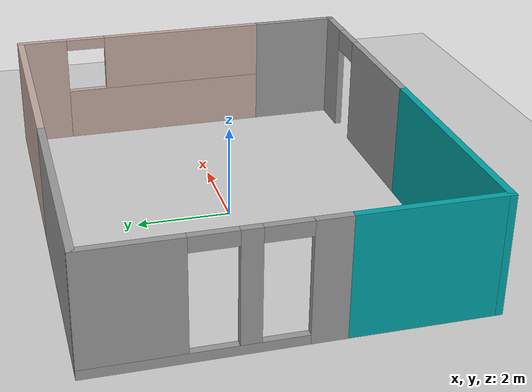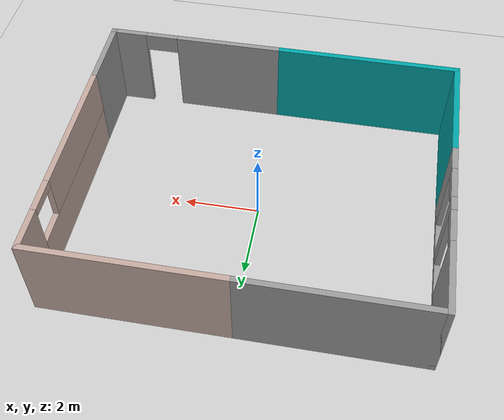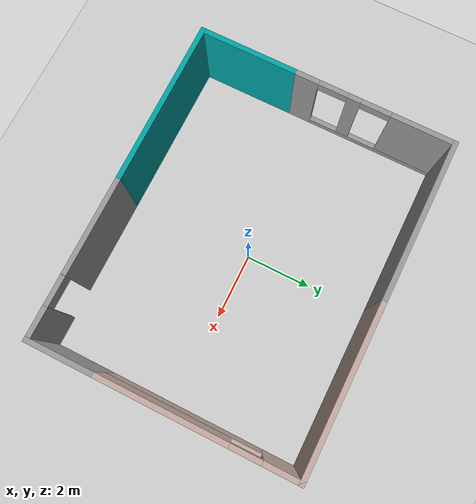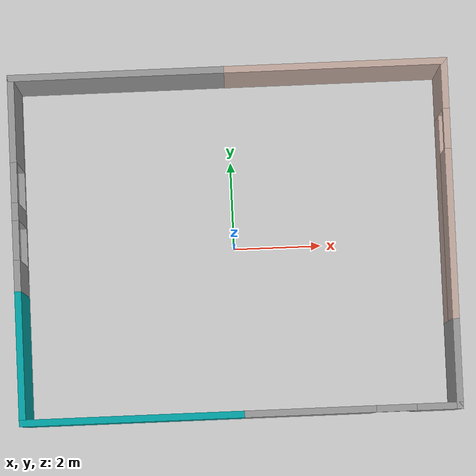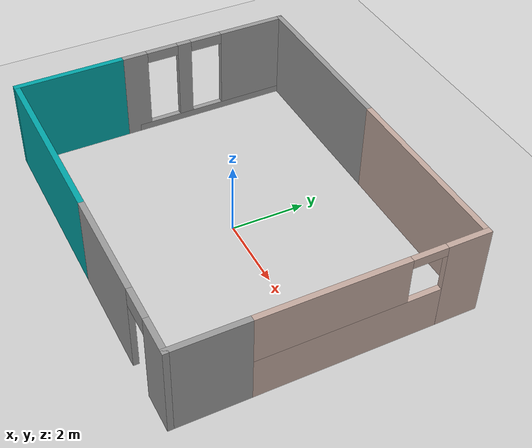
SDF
<sdf version="1.7">
 <world name="default">
  <model name="ground_plane">
   <static>1</static>
   <link name="link">
    <collision name="collision">
     <geometry><plane><normal>0 0 1</normal><size>100 100</size></plane></geometry>
     <surface>
      <contact><collide_bitmask>65535</collide_bitmask></contact>
      <friction><ode><mu>100</mu><mu2>50</mu2></ode></friction>
     </surface>
    </collision>
    <visual name="visual">
     <cast_shadows>0</cast_shadows>
     <geometry><plane><normal>0 0 1</normal><size>100 100</size></plane></geometry>
     <material>
      <script><uri>file://media/materials/scripts/gazebo.material</uri><name>Gazebo/Grey</name></script>
     </material>
    </visual>
   </link>
  </model>
  <model name="my_building_p4_small_0">
   <link name="Wall_16">
    <pose>-2.425 3.85 0 0 -0 0</pose>
    <inertial>
     <mass>1</mass>
     <inertia><ixx>1</ixx><ixy>0</ixy><ixz>0</ixz><iyy>1</iyy><iyz>0</iyz><izz>1</izz></inertia>
    </inertial>
    <visual name="Wall_16_Visual">
     <pose>-0.075 0 1.25 0 -0 0</pose>
     <geometry><box><size>4.85 0.15 2.5</size></box></geometry>
     <material>
      <script><uri>file://media/materials/scripts/gazebo.material</uri><name>Gazebo/Grey</name></script>
      <ambient>1 1 1 1</ambient>
      <shader type="pixel"><normal_map>__default__</normal_map></shader>
      <diffuse>0.7 0.7 0.7 1</diffuse>
      <specular>0.01 0.01 0.01 1</specular>
      <emissive>0 0 0 1</emissive>
     </material>
     <meta><layer>0</layer></meta>
    </visual>
    <collision name="Wall_16_Collision">
     <pose>-0.075 0 1.25 0 -0 0</pose>
     <geometry><box><size>4.85 0.15 2.5</size></box></geometry>
     <surface>
      <friction>
       <ode><mu>1</mu><mu2>1</mu2><fdir1>0 0 0</fdir1><slip1>0</slip1><slip2>0</slip2></ode>
       <torsional>
        <coefficient>1</coefficient>
        <patch_radius>0</patch_radius>
        <surface_radius>0</surface_radius>
        <use_patch_radius>1</use_patch_radius>
        <ode><slip>0</slip></ode>
       </torsional>
      </friction>
      <bounce><restitution_coefficient>0</restitution_coefficient><threshold>1e+06</threshold></bounce>
      <contact>
       <collide_without_contact>0</collide_without_contact>
       <collide_without_contact_bitmask>1</collide_without_contact_bitmask>
       <collide_bitmask>1</collide_bitmask>
       <ode>
        <soft_cfm>0</soft_cfm>
        <soft_erp>0.2</soft_erp>
        <kp>1e+13</kp>
        <kd>1</kd>
        <max_vel>0.01</max_vel>
        <min_depth>0</min_depth>
       </ode>
       <bullet>
        <split_impulse>1</split_impulse>
        <split_impulse_penetration_threshold>-0.01</split_impulse_penetration_threshold>
        <soft_cfm>0</soft_cfm>
        <soft_erp>0.2</soft_erp>
        <kp>1e+13</kp>
        <kd>1</kd>
       </bullet>
      </contact>
     </surface>
    </collision>
   </link>
   <link name="Wall_17">
    <pose>2.425 3.85 0 0 -0 0</pose>
    <inertial>
     <mass>1</mass>
     <inertia><ixx>1</ixx><ixy>0</ixy><ixz>0</ixz><iyy>1</iyy><iyz>0</iyz><izz>1</izz></inertia>
    </inertial>
    <visual name="Wall_17_Visual">
     <pose>0 0 1.25 0 -0 0</pose>
     <geometry><box><size>5 0.15 2.5</size></box></geometry>
     <material>
      <script><uri>file://media/materials/scripts/gazebo.material</uri><name>Gazebo/Grey</name></script>
      <ambient>0.76 0.66 0.62 1</ambient>
      <shader type="pixel"><normal_map>__default__</normal_map></shader>
      <diffuse>0.76 0.66 0.62 1</diffuse>
      <specular>0.01 0.01 0.01 1</specular>
      <emissive>0 0 0 1</emissive>
     </material>
     <meta><layer>0</layer></meta>
    </visual>
    <collision name="Wall_17_Collision">
     <pose>0 0 1.25 0 -0 0</pose>
     <geometry><box><size>5 0.15 2.5</size></box></geometry>
     <surface>
      <friction>
       <ode><mu>1</mu><mu2>1</mu2><fdir1>0 0 0</fdir1><slip1>0</slip1><slip2>0</slip2></ode>
       <torsional>
        <coefficient>1</coefficient>
        <patch_radius>0</patch_radius>
        <surface_radius>0</surface_radius>
        <use_patch_radius>1</use_patch_radius>
        <ode><slip>0</slip></ode>
       </torsional>
      </friction>
      <bounce><restitution_coefficient>0</restitution_coefficient><threshold>1e+06</threshold></bounce>
      <contact>
       <collide_without_contact>0</collide_without_contact>
       <collide_without_contact_bitmask>1</collide_without_contact_bitmask>
       <collide_bitmask>1</collide_bitmask>
       <ode>
        <soft_cfm>0</soft_cfm>
        <soft_erp>0.2</soft_erp>
        <kp>1e+13</kp>
        <kd>1</kd>
        <max_vel>0.01</max_vel>
        <min_depth>0</min_depth>
       </ode>
       <bullet>
        <split_impulse>1</split_impulse>
        <split_impulse_penetration_threshold>-0.01</split_impulse_penetration_threshold>
        <soft_cfm>0</soft_cfm>
        <soft_erp>0.2</soft_erp>
        <kp>1e+13</kp>
        <kd>1</kd>
       </bullet>
      </contact>
     </surface>
    </collision>
   </link>
   <link name="Wall_18">
    <pose>4.85 2.425 0 0 0 -1.5708</pose>
    <inertial>
     <mass>1</mass>
     <inertia><ixx>1</ixx><ixy>0</ixy><ixz>0</ixz><iyy>1</iyy><iyz>0</iyz><izz>1</izz></inertia>
    </inertial>
    <visual name="Wall_18_Visual_0">
     <pose>-0.925323 0 1.25 0 -0 0</pose>
     <geometry><box><size>1.14935 0.15 2.5</size></box></geometry>
     <material>
      <script><uri>file://media/materials/scripts/gazebo.material</uri><name>Gazebo/Grey</name></script>
      <ambient>0.76 0.66 0.62 1</ambient>
      <shader type="pixel"><normal_map>__default__</normal_map></shader>
      <diffuse>0.76 0.66 0.62 1</diffuse>
      <specular>0.01 0.01 0.01 1</specular>
      <emissive>0 0 0 1</emissive>
     </material>
     <meta><layer>0</layer></meta>
    </visual>
    <visual name="Wall_18_Visual_3">
     <pose>0.1 0 2.375 0 -0 0</pose>
     <geometry><box><size>0.9 0.15 0.25</size></box></geometry>
     <material>
      <script><uri>file://media/materials/scripts/gazebo.material</uri><name>Gazebo/Grey</name></script>
      <ambient>0.76 0.66 0.62 1</ambient>
      <shader type="pixel"><normal_map>__default__</normal_map></shader>
      <diffuse>0.76 0.66 0.62 1</diffuse>
      <specular>0.01 0.01 0.01 1</specular>
      <emissive>0 0 0 1</emissive>
     </material>
     <meta><layer>0</layer></meta>
    </visual>
    <visual name="Wall_18_Visual_1">
     <pose>2 0 0.6 0 -0 0</pose>
     <geometry><box><size>4.7 0.15 1.2</size></box></geometry>
     <material>
      <script><uri>file://media/materials/scripts/gazebo.material</uri><name>Gazebo/Grey</name></script>
      <ambient>0.76 0.66 0.62 1</ambient>
      <shader type="pixel"><normal_map>__default__</normal_map></shader>
      <diffuse>0.76 0.66 0.62 1</diffuse>
      <specular>0.01 0.01 0.01 1</specular>
      <emissive>0 0 0 1</emissive>
     </material>
     <meta><layer>0</layer></meta>
    </visual>
    <visual name="Wall_18_Visual_2">
     <pose>2.45 0 1.85 0 -0 0</pose>
     <geometry><box><size>3.8 0.15 1.3</size></box></geometry>
     <material>
      <script><uri>file://media/materials/scripts/gazebo.material</uri><name>Gazebo/Grey</name></script>
      <ambient>0.76 0.66 0.62 1</ambient>
      <shader type="pixel"><normal_map>__default__</normal_map></shader>
      <diffuse>0.76 0.66 0.62 1</diffuse>
      <specular>0.01 0.01 0.01 1</specular>
      <emissive>0 0 0 1</emissive>
     </material>
     <meta><layer>0</layer></meta>
    </visual>
    <collision name="Wall_18_Collision_2">
     <pose>2.45 0 1.85 0 -0 0</pose>
     <geometry><box><size>3.8 0.15 1.3</size></box></geometry>
     <surface>
      <friction>
       <ode><mu>1</mu><mu2>1</mu2><fdir1>0 0 0</fdir1><slip1>0</slip1><slip2>0</slip2></ode>
       <torsional>
        <coefficient>1</coefficient>
        <patch_radius>0</patch_radius>
        <surface_radius>0</surface_radius>
        <use_patch_radius>1</use_patch_radius>
        <ode><slip>0</slip></ode>
       </torsional>
      </friction>
      <bounce><restitution_coefficient>0</restitution_coefficient><threshold>1e+06</threshold></bounce>
      <contact>
       <collide_without_contact>0</collide_without_contact>
       <collide_without_contact_bitmask>1</collide_without_contact_bitmask>
       <collide_bitmask>1</collide_bitmask>
       <ode>
        <soft_cfm>0</soft_cfm>
        <soft_erp>0.2</soft_erp>
        <kp>1e+13</kp>
        <kd>1</kd>
        <max_vel>0.01</max_vel>
        <min_depth>0</min_depth>
       </ode>
       <bullet>
        <split_impulse>1</split_impulse>
        <split_impulse_penetration_threshold>-0.01</split_impulse_penetration_threshold>
        <soft_cfm>0</soft_cfm>
        <soft_erp>0.2</soft_erp>
        <kp>1e+13</kp>
        <kd>1</kd>
       </bullet>
      </contact>
     </surface>
    </collision>
    <collision name="Wall_18_Collision_0">
     <pose>-0.925323 0 1.25 0 -0 0</pose>
     <geometry><box><size>1.14935 0.15 2.5</size></box></geometry>
     <surface>
      <friction>
       <ode><mu>1</mu><mu2>1</mu2><fdir1>0 0 0</fdir1><slip1>0</slip1><slip2>0</slip2></ode>
       <torsional>
        <coefficient>1</coefficient>
        <patch_radius>0</patch_radius>
        <surface_radius>0</surface_radius>
        <use_patch_radius>1</use_patch_radius>
        <ode><slip>0</slip></ode>
       </torsional>
      </friction>
      <bounce><restitution_coefficient>0</restitution_coefficient><threshold>1e+06</threshold></bounce>
      <contact>
       <collide_without_contact>0</collide_without_contact>
       <collide_without_contact_bitmask>1</collide_without_contact_bitmask>
       <collide_bitmask>1</collide_bitmask>
       <ode>
        <soft_cfm>0</soft_cfm>
        <soft_erp>0.2</soft_erp>
        <kp>1e+13</kp>
        <kd>1</kd>
        <max_vel>0.01</max_vel>
        <min_depth>0</min_depth>
       </ode>
       <bullet>
        <split_impulse>1</split_impulse>
        <split_impulse_penetration_threshold>-0.01</split_impulse_penetration_threshold>
        <soft_cfm>0</soft_cfm>
        <soft_erp>0.2</soft_erp>
        <kp>1e+13</kp>
        <kd>1</kd>
       </bullet>
      </contact>
     </surface>
    </collision>
    <collision name="Wall_18_Collision_1">
     <pose>2 0 0.6 0 -0 0</pose>
     <geometry><box><size>4.7 0.15 1.2</size></box></geometry>
     <surface>
      <friction>
       <ode><mu>1</mu><mu2>1</mu2><fdir1>0 0 0</fdir1><slip1>0</slip1><slip2>0</slip2></ode>
       <torsional>
        <coefficient>1</coefficient>
        <patch_radius>0</patch_radius>
        <surface_radius>0</surface_radius>
        <use_patch_radius>1</use_patch_radius>
        <ode><slip>0</slip></ode>
       </torsional>
      </friction>
      <bounce><restitution_coefficient>0</restitution_coefficient><threshold>1e+06</threshold></bounce>
      <contact>
       <collide_without_contact>0</collide_without_contact>
       <collide_without_contact_bitmask>1</collide_without_contact_bitmask>
       <collide_bitmask>1</collide_bitmask>
       <ode>
        <soft_cfm>0</soft_cfm>
        <soft_erp>0.2</soft_erp>
        <kp>1e+13</kp>
        <kd>1</kd>
        <max_vel>0.01</max_vel>
        <min_depth>0</min_depth>
       </ode>
       <bullet>
        <split_impulse>1</split_impulse>
        <split_impulse_penetration_threshold>-0.01</split_impulse_penetration_threshold>
        <soft_cfm>0</soft_cfm>
        <soft_erp>0.2</soft_erp>
        <kp>1e+13</kp>
        <kd>1</kd>
       </bullet>
      </contact>
     </surface>
    </collision>
    <collision name="Wall_18_Collision_3">
     <pose>0.1 0 2.375 0 -0 0</pose>
     <geometry><box><size>0.9 0.15 0.25</size></box></geometry>
     <surface>
      <friction>
       <ode><mu>1</mu><mu2>1</mu2><fdir1>0 0 0</fdir1><slip1>0</slip1><slip2>0</slip2></ode>
       <torsional>
        <coefficient>1</coefficient>
        <patch_radius>0</patch_radius>
        <surface_radius>0</surface_radius>
        <use_patch_radius>1</use_patch_radius>
        <ode><slip>0</slip></ode>
       </torsional>
      </friction>
      <bounce><restitution_coefficient>0</restitution_coefficient><threshold>1e+06</threshold></bounce>
      <contact>
       <collide_without_contact>0</collide_without_contact>
       <collide_without_contact_bitmask>1</collide_without_contact_bitmask>
       <collide_bitmask>1</collide_bitmask>
       <ode>
        <soft_cfm>0</soft_cfm>
        <soft_erp>0.2</soft_erp>
        <kp>1e+13</kp>
        <kd>1</kd>
        <max_vel>0.01</max_vel>
        <min_depth>0</min_depth>
       </ode>
       <bullet>
        <split_impulse>1</split_impulse>
        <split_impulse_penetration_threshold>-0.01</split_impulse_penetration_threshold>
        <soft_cfm>0</soft_cfm>
        <soft_erp>0.2</soft_erp>
        <kp>1e+13</kp>
        <kd>1</kd>
       </bullet>
      </contact>
     </surface>
    </collision>
   </link>
   <link name="Wall_19">
    <pose>4.85 -1.425 0 0 0 -1.5708</pose>
    <inertial>
     <mass>1</mass>
     <inertia><ixx>1</ixx><ixy>0</ixy><ixz>0</ixz><iyy>1</iyy><iyz>0</iyz><izz>1</izz></inertia>
    </inertial>
    <visual name="Wall_19_Visual">
     <pose>1.5 0 1.25 0 -0 0</pose>
     <geometry><box><size>2 0.15 2.5</size></box></geometry>
     <material>
      <script><uri>file://media/materials/scripts/gazebo.material</uri><name>Gazebo/Grey</name></script>
      <ambient>1 1 1 1</ambient>
      <shader type="pixel"><normal_map>__default__</normal_map></shader>
      <diffuse>0.7 0.7 0.7 1</diffuse>
      <specular>0.01 0.01 0.01 1</specular>
      <emissive>0 0 0 1</emissive>
     </material>
     <meta><layer>0</layer></meta>
    </visual>
    <collision name="Wall_19_Collision">
     <pose>1.5 0 1.25 0 -0 0</pose>
     <geometry><box><size>2 0.15 2.5</size></box></geometry>
     <surface>
      <friction>
       <ode><mu>1</mu><mu2>1</mu2><fdir1>0 0 0</fdir1><slip1>0</slip1><slip2>0</slip2></ode>
       <torsional>
        <coefficient>1</coefficient>
        <patch_radius>0</patch_radius>
        <surface_radius>0</surface_radius>
        <use_patch_radius>1</use_patch_radius>
        <ode><slip>0</slip></ode>
       </torsional>
      </friction>
      <bounce><restitution_coefficient>0</restitution_coefficient><threshold>1e+06</threshold></bounce>
      <contact>
       <collide_without_contact>0</collide_without_contact>
       <collide_without_contact_bitmask>1</collide_without_contact_bitmask>
       <collide_bitmask>1</collide_bitmask>
       <ode>
        <soft_cfm>0</soft_cfm>
        <soft_erp>0.2</soft_erp>
        <kp>1e+13</kp>
        <kd>1</kd>
        <max_vel>0.01</max_vel>
        <min_depth>0</min_depth>
       </ode>
       <bullet>
        <split_impulse>1</split_impulse>
        <split_impulse_penetration_threshold>-0.01</split_impulse_penetration_threshold>
        <soft_cfm>0</soft_cfm>
        <soft_erp>0.2</soft_erp>
        <kp>1e+13</kp>
        <kd>1</kd>
       </bullet>
      </contact>
     </surface>
    </collision>
   </link>
   <link name="Wall_20">
    <pose>2.425 -3.85 0 0 -0 3.14159</pose>
    <inertial>
     <mass>1</mass>
     <inertia><ixx>1</ixx><ixy>0</ixy><ixz>0</ixz><iyy>1</iyy><iyz>0</iyz><izz>1</izz></inertia>
    </inertial>
    <visual name="Wall_20_Visual_0">
     <pose>-1.9855 0 1.25 0 -0 0</pose>
     <geometry><box><size>1.02901 0.15 2.5</size></box></geometry>
     <material>
      <script><uri>file://media/materials/scripts/gazebo.material</uri><name>Gazebo/Grey</name></script>
      <ambient>1 1 1 1</ambient>
      <shader type="pixel"><normal_map>__default__</normal_map></shader>
      <diffuse>0.7 0.7 0.7 1</diffuse>
      <specular>0.01 0.01 0.01 1</specular>
      <emissive>0 0 0 1</emissive>
     </material>
     <meta><layer>0</layer></meta>
    </visual>
    <visual name="Wall_20_Visual_1">
     <pose>0.89 0 1.25 0 -0 0</pose>
     <geometry><box><size>2.92 0.15 2.5</size></box></geometry>
     <material>
      <script><uri>file://media/materials/scripts/gazebo.material</uri><name>Gazebo/Grey</name></script>
      <ambient>1 1 1 1</ambient>
      <shader type="pixel"><normal_map>__default__</normal_map></shader>
      <diffuse>0.7 0.7 0.7 1</diffuse>
      <specular>0.01 0.01 0.01 1</specular>
      <emissive>0 0 0 1</emissive>
     </material>
     <meta><layer>0</layer></meta>
    </visual>
    <visual name="Wall_20_Visual_2">
     <pose>-1.02099 0 2.25 0 -0 0</pose>
     <geometry><box><size>0.9 0.15 0.5</size></box></geometry>
     <material>
      <script><uri>file://media/materials/scripts/gazebo.material</uri><name>Gazebo/Grey</name></script>
      <ambient>1 1 1 1</ambient>
      <shader type="pixel"><normal_map>__default__</normal_map></shader>
      <diffuse>0.7 0.7 0.7 1</diffuse>
      <specular>0.01 0.01 0.01 1</specular>
      <emissive>0 0 0 1</emissive>
     </material>
     <meta><layer>0</layer></meta>
    </visual>
    <collision name="Wall_20_Collision_2">
     <pose>-1.02099 0 2.25 0 -0 0</pose>
     <geometry><box><size>0.9 0.15 0.5</size></box></geometry>
     <surface>
      <friction>
       <ode><mu>1</mu><mu2>1</mu2><fdir1>0 0 0</fdir1><slip1>0</slip1><slip2>0</slip2></ode>
       <torsional>
        <coefficient>1</coefficient>
        <patch_radius>0</patch_radius>
        <surface_radius>0</surface_radius>
        <use_patch_radius>1</use_patch_radius>
        <ode><slip>0</slip></ode>
       </torsional>
      </friction>
      <bounce><restitution_coefficient>0</restitution_coefficient><threshold>1e+06</threshold></bounce>
      <contact>
       <collide_without_contact>0</collide_without_contact>
       <collide_without_contact_bitmask>1</collide_without_contact_bitmask>
       <collide_bitmask>1</collide_bitmask>
       <ode>
        <soft_cfm>0</soft_cfm>
        <soft_erp>0.2</soft_erp>
        <kp>1e+13</kp>
        <kd>1</kd>
        <max_vel>0.01</max_vel>
        <min_depth>0</min_depth>
       </ode>
       <bullet>
        <split_impulse>1</split_impulse>
        <split_impulse_penetration_threshold>-0.01</split_impulse_penetration_threshold>
        <soft_cfm>0</soft_cfm>
        <soft_erp>0.2</soft_erp>
        <kp>1e+13</kp>
        <kd>1</kd>
       </bullet>
      </contact>
     </surface>
    </collision>
    <collision name="Wall_20_Collision_1">
     <pose>0.89 0 1.25 0 -0 0</pose>
     <geometry><box><size>2.92 0.15 2.5</size></box></geometry>
     <surface>
      <friction>
       <ode><mu>1</mu><mu2>1</mu2><fdir1>0 0 0</fdir1><slip1>0</slip1><slip2>0</slip2></ode>
       <torsional>
        <coefficient>1</coefficient>
        <patch_radius>0</patch_radius>
        <surface_radius>0</surface_radius>
        <use_patch_radius>1</use_patch_radius>
        <ode><slip>0</slip></ode>
       </torsional>
      </friction>
      <bounce><restitution_coefficient>0</restitution_coefficient><threshold>1e+06</threshold></bounce>
      <contact>
       <collide_without_contact>0</collide_without_contact>
       <collide_without_contact_bitmask>1</collide_without_contact_bitmask>
       <collide_bitmask>1</collide_bitmask>
       <ode>
        <soft_cfm>0</soft_cfm>
        <soft_erp>0.2</soft_erp>
        <kp>1e+13</kp>
        <kd>1</kd>
        <max_vel>0.01</max_vel>
        <min_depth>0</min_depth>
       </ode>
       <bullet>
        <split_impulse>1</split_impulse>
        <split_impulse_penetration_threshold>-0.01</split_impulse_penetration_threshold>
        <soft_cfm>0</soft_cfm>
        <soft_erp>0.2</soft_erp>
        <kp>1e+13</kp>
        <kd>1</kd>
       </bullet>
      </contact>
     </surface>
    </collision>
    <collision name="Wall_20_Collision_0">
     <pose>-1.9855 0 1.25 0 -0 0</pose>
     <geometry><box><size>1.02901 0.15 2.5</size></box></geometry>
     <surface>
      <friction>
       <ode><mu>1</mu><mu2>1</mu2><fdir1>0 0 0</fdir1><slip1>0</slip1><slip2>0</slip2></ode>
       <torsional>
        <coefficient>1</coefficient>
        <patch_radius>0</patch_radius>
        <surface_radius>0</surface_radius>
        <use_patch_radius>1</use_patch_radius>
        <ode><slip>0</slip></ode>
       </torsional>
      </friction>
      <bounce><restitution_coefficient>0</restitution_coefficient><threshold>1e+06</threshold></bounce>
      <contact>
       <collide_without_contact>0</collide_without_contact>
       <collide_without_contact_bitmask>1</collide_without_contact_bitmask>
       <collide_bitmask>1</collide_bitmask>
       <ode>
        <soft_cfm>0</soft_cfm>
        <soft_erp>0.2</soft_erp>
        <kp>1e+13</kp>
        <kd>1</kd>
        <max_vel>0.01</max_vel>
        <min_depth>0</min_depth>
       </ode>
       <bullet>
        <split_impulse>1</split_impulse>
        <split_impulse_penetration_threshold>-0.01</split_impulse_penetration_threshold>
        <soft_cfm>0</soft_cfm>
        <soft_erp>0.2</soft_erp>
        <kp>1e+13</kp>
        <kd>1</kd>
       </bullet>
      </contact>
     </surface>
    </collision>
   </link>
   <link name="Wall_21">
    <pose>-2.425 -3.85 0 0 -0 3.14159</pose>
    <inertial>
     <mass>1</mass>
     <inertia><ixx>1</ixx><ixy>0</ixy><ixz>0</ixz><iyy>1</iyy><iyz>0</iyz><izz>1</izz></inertia>
    </inertial>
    <visual name="Wall_21_Visual">
     <pose>0 0 1.25 0 -0 0</pose>
     <geometry><box><size>5 0.15 2.5</size></box></geometry>
     <material>
      <script><uri>file://media/materials/scripts/gazebo.material</uri><name>Gazebo/Grey</name></script>
      <ambient>0 0.64 0.65 1</ambient>
      <shader type="pixel"><normal_map>__default__</normal_map></shader>
      <diffuse>0 0.64 0.65 1</diffuse>
      <specular>0.01 0.01 0.01 1</specular>
      <emissive>0 0 0 1</emissive>
     </material>
     <meta><layer>0</layer></meta>
    </visual>
    <collision name="Wall_21_Collision">
     <pose>0 0 1.25 0 -0 0</pose>
     <geometry><box><size>5 0.15 2.5</size></box></geometry>
     <surface>
      <friction>
       <ode><mu>1</mu><mu2>1</mu2><fdir1>0 0 0</fdir1><slip1>0</slip1><slip2>0</slip2></ode>
       <torsional>
        <coefficient>1</coefficient>
        <patch_radius>0</patch_radius>
        <surface_radius>0</surface_radius>
        <use_patch_radius>1</use_patch_radius>
        <ode><slip>0</slip></ode>
       </torsional>
      </friction>
      <bounce><restitution_coefficient>0</restitution_coefficient><threshold>1e+06</threshold></bounce>
      <contact>
       <collide_without_contact>0</collide_without_contact>
       <collide_without_contact_bitmask>1</collide_without_contact_bitmask>
       <collide_bitmask>1</collide_bitmask>
       <ode>
        <soft_cfm>0</soft_cfm>
        <soft_erp>0.2</soft_erp>
        <kp>1e+13</kp>
        <kd>1</kd>
        <max_vel>0.01</max_vel>
        <min_depth>0</min_depth>
       </ode>
       <bullet>
        <split_impulse>1</split_impulse>
        <split_impulse_penetration_threshold>-0.01</split_impulse_penetration_threshold>
        <soft_cfm>0</soft_cfm>
        <soft_erp>0.2</soft_erp>
        <kp>1e+13</kp>
        <kd>1</kd>
       </bullet>
      </contact>
     </surface>
    </collision>
   </link>
   <link name="Wall_22">
    <pose>-4.85 -2.425 0 0 -0 1.5708</pose>
    <inertial>
     <mass>1</mass>
     <inertia><ixx>1</ixx><ixy>0</ixy><ixz>0</ixz><iyy>1</iyy><iyz>0</iyz><izz>1</izz></inertia>
    </inertial>
    <visual name="Wall_22_Visual">
     <pose>0 0 1.25 0 -0 0</pose>
     <geometry><box><size>3 0.15 2.5</size></box></geometry>
     <material>
      <script><uri>file://media/materials/scripts/gazebo.material</uri><name>Gazebo/Grey</name></script>
      <ambient>0 0.64 0.65 1</ambient>
      <shader type="pixel"><normal_map>__default__</normal_map></shader>
      <diffuse>0 0.64 0.65 1</diffuse>
      <specular>0.01 0.01 0.01 1</specular>
      <emissive>0 0 0 1</emissive>
     </material>
     <meta><layer>0</layer></meta>
    </visual>
    <collision name="Wall_22_Collision">
     <pose>0 0 1.25 0 -0 0</pose>
     <geometry><box><size>3 0.15 2.5</size></box></geometry>
     <surface>
      <friction>
       <ode><mu>1</mu><mu2>1</mu2><fdir1>0 0 0</fdir1><slip1>0</slip1><slip2>0</slip2></ode>
       <torsional>
        <coefficient>1</coefficient>
        <patch_radius>0</patch_radius>
        <surface_radius>0</surface_radius>
        <use_patch_radius>1</use_patch_radius>
        <ode><slip>0</slip></ode>
       </torsional>
      </friction>
      <bounce><restitution_coefficient>0</restitution_coefficient><threshold>1e+06</threshold></bounce>
      <contact>
       <collide_without_contact>0</collide_without_contact>
       <collide_without_contact_bitmask>1</collide_without_contact_bitmask>
       <collide_bitmask>1</collide_bitmask>
       <ode>
        <soft_cfm>0</soft_cfm>
        <soft_erp>0.2</soft_erp>
        <kp>1e+13</kp>
        <kd>1</kd>
        <max_vel>0.01</max_vel>
        <min_depth>0</min_depth>
       </ode>
       <bullet>
        <split_impulse>1</split_impulse>
        <split_impulse_penetration_threshold>-0.01</split_impulse_penetration_threshold>
        <soft_cfm>0</soft_cfm>
        <soft_erp>0.2</soft_erp>
        <kp>1e+13</kp>
        <kd>1</kd>
       </bullet>
      </contact>
     </surface>
    </collision>
   </link>
   <link name="Wall_23">
    <pose>-4.85 1.425 0 0 -0 1.5708</pose>
    <inertial>
     <mass>1</mass>
     <inertia><ixx>1</ixx><ixy>0</ixy><ixz>0</ixz><iyy>1</iyy><iyz>0</iyz><izz>1</izz></inertia>
    </inertial>
    <visual name="Wall_23_Visual_0">
     <pose>-2 0 1.25 0 -0 0</pose>
     <geometry><box><size>0.7 0.15 2.5</size></box></geometry>
     <material>
      <script><uri>file://media/materials/scripts/gazebo.material</uri><name>Gazebo/Grey</name></script>
      <ambient>1 1 1 1</ambient>
      <shader type="pixel"><normal_map>__default__</normal_map></shader>
      <diffuse>0.7 0.7 0.7 1</diffuse>
      <specular>0.01 0.01 0.01 1</specular>
      <emissive>0 0 0 1</emissive>
     </material>
     <meta><layer>0</layer></meta>
    </visual>
    <visual name="Wall_23_Visual_3">
     <pose>1.51852 0 1.35 0 -0 0</pose>
     <geometry><box><size>1.96296 0.15 2.3</size></box></geometry>
     <material>
      <script><uri>file://media/materials/scripts/gazebo.material</uri><name>Gazebo/Grey</name></script>
      <ambient>1 1 1 1</ambient>
      <shader type="pixel"><normal_map>__default__</normal_map></shader>
      <diffuse>0.7 0.7 0.7 1</diffuse>
      <specular>0.01 0.01 0.01 1</specular>
      <emissive>0 0 0 1</emissive>
     </material>
     <meta><layer>0</layer></meta>
    </visual>
    <visual name="Wall_23_Visual_1">
     <pose>0.253061 0 0.1 0 -0 0</pose>
     <geometry><box><size>4.49388 0.15 0.2</size></box></geometry>
     <material>
      <script><uri>file://media/materials/scripts/gazebo.material</uri><name>Gazebo/Grey</name></script>
      <ambient>1 1 1 1</ambient>
      <shader type="pixel"><normal_map>__default__</normal_map></shader>
      <diffuse>0.7 0.7 0.7 1</diffuse>
      <specular>0.01 0.01 0.01 1</specular>
      <emissive>0 0 0 1</emissive>
     </material>
     <meta><layer>0</layer></meta>
    </visual>
    <visual name="Wall_23_Visual_4">
     <pose>-1.213 0 2.35 0 -0 0</pose>
     <geometry><box><size>0.9 0.15 0.3</size></box></geometry>
     <material>
      <script><uri>file://media/materials/scripts/gazebo.material</uri><name>Gazebo/Grey</name></script>
      <ambient>1 1 1 1</ambient>
      <shader type="pixel"><normal_map>__default__</normal_map></shader>
      <diffuse>0.7 0.7 0.7 1</diffuse>
      <specular>0.01 0.01 0.01 1</specular>
      <emissive>0 0 0 1</emissive>
     </material>
     <meta><layer>0</layer></meta>
    </visual>
    <visual name="Wall_23_Visual_5">
     <pose>0.087039 0 2.35 0 -0 0</pose>
     <geometry><box><size>0.9 0.15 0.3</size></box></geometry>
     <material>
      <script><uri>file://media/materials/scripts/gazebo.material</uri><name>Gazebo/Grey</name></script>
      <ambient>1 1 1 1</ambient>
      <shader type="pixel"><normal_map>__default__</normal_map></shader>
      <diffuse>0.7 0.7 0.7 1</diffuse>
      <specular>0.01 0.01 0.01 1</specular>
      <emissive>0 0 0 1</emissive>
     </material>
     <meta><layer>0</layer></meta>
    </visual>
    <visual name="Wall_23_Visual_2">
     <pose>-0.563 0 1.35 0 -0 0</pose>
     <geometry><box><size>0.4 0.15 2.3</size></box></geometry>
     <material>
      <script><uri>file://media/materials/scripts/gazebo.material</uri><name>Gazebo/Grey</name></script>
      <ambient>1 1 1 1</ambient>
      <shader type="pixel"><normal_map>__default__</normal_map></shader>
      <diffuse>0.7 0.7 0.7 1</diffuse>
      <specular>0.01 0.01 0.01 1</specular>
      <emissive>0 0 0 1</emissive>
     </material>
     <meta><layer>0</layer></meta>
    </visual>
    <collision name="Wall_23_Collision_5">
     <pose>0.087039 0 2.35 0 -0 0</pose>
     <geometry><box><size>0.9 0.15 0.3</size></box></geometry>
     <surface>
      <friction>
       <ode><mu>1</mu><mu2>1</mu2><fdir1>0 0 0</fdir1><slip1>0</slip1><slip2>0</slip2></ode>
       <torsional>
        <coefficient>1</coefficient>
        <patch_radius>0</patch_radius>
        <surface_radius>0</surface_radius>
        <use_patch_radius>1</use_patch_radius>
        <ode><slip>0</slip></ode>
       </torsional>
      </friction>
      <bounce><restitution_coefficient>0</restitution_coefficient><threshold>1e+06</threshold></bounce>
      <contact>
       <collide_without_contact>0</collide_without_contact>
       <collide_without_contact_bitmask>1</collide_without_contact_bitmask>
       <collide_bitmask>1</collide_bitmask>
       <ode>
        <soft_cfm>0</soft_cfm>
        <soft_erp>0.2</soft_erp>
        <kp>1e+13</kp>
        <kd>1</kd>
        <max_vel>0.01</max_vel>
        <min_depth>0</min_depth>
       </ode>
       <bullet>
        <split_impulse>1</split_impulse>
        <split_impulse_penetration_threshold>-0.01</split_impulse_penetration_threshold>
        <soft_cfm>0</soft_cfm>
        <soft_erp>0.2</soft_erp>
        <kp>1e+13</kp>
        <kd>1</kd>
       </bullet>
      </contact>
     </surface>
    </collision>
    <collision name="Wall_23_Collision_1">
     <pose>0.253061 0 0.1 0 -0 0</pose>
     <geometry><box><size>4.49388 0.15 0.2</size></box></geometry>
     <surface>
      <friction>
       <ode><mu>1</mu><mu2>1</mu2><fdir1>0 0 0</fdir1><slip1>0</slip1><slip2>0</slip2></ode>
       <torsional>
        <coefficient>1</coefficient>
        <patch_radius>0</patch_radius>
        <surface_radius>0</surface_radius>
        <use_patch_radius>1</use_patch_radius>
        <ode><slip>0</slip></ode>
       </torsional>
      </friction>
      <bounce><restitution_coefficient>0</restitution_coefficient><threshold>1e+06</threshold></bounce>
      <contact>
       <collide_without_contact>0</collide_without_contact>
       <collide_without_contact_bitmask>1</collide_without_contact_bitmask>
       <collide_bitmask>1</collide_bitmask>
       <ode>
        <soft_cfm>0</soft_cfm>
        <soft_erp>0.2</soft_erp>
        <kp>1e+13</kp>
        <kd>1</kd>
        <max_vel>0.01</max_vel>
        <min_depth>0</min_depth>
       </ode>
       <bullet>
        <split_impulse>1</split_impulse>
        <split_impulse_penetration_threshold>-0.01</split_impulse_penetration_threshold>
        <soft_cfm>0</soft_cfm>
        <soft_erp>0.2</soft_erp>
        <kp>1e+13</kp>
        <kd>1</kd>
       </bullet>
      </contact>
     </surface>
    </collision>
    <collision name="Wall_23_Collision_3">
     <pose>1.51852 0 1.35 0 -0 0</pose>
     <geometry><box><size>1.96296 0.15 2.3</size></box></geometry>
     <surface>
      <friction>
       <ode><mu>1</mu><mu2>1</mu2><fdir1>0 0 0</fdir1><slip1>0</slip1><slip2>0</slip2></ode>
       <torsional>
        <coefficient>1</coefficient>
        <patch_radius>0</patch_radius>
        <surface_radius>0</surface_radius>
        <use_patch_radius>1</use_patch_radius>
        <ode><slip>0</slip></ode>
       </torsional>
      </friction>
      <bounce><restitution_coefficient>0</restitution_coefficient><threshold>1e+06</threshold></bounce>
      <contact>
       <collide_without_contact>0</collide_without_contact>
       <collide_without_contact_bitmask>1</collide_without_contact_bitmask>
       <collide_bitmask>1</collide_bitmask>
       <ode>
        <soft_cfm>0</soft_cfm>
        <soft_erp>0.2</soft_erp>
        <kp>1e+13</kp>
        <kd>1</kd>
        <max_vel>0.01</max_vel>
        <min_depth>0</min_depth>
       </ode>
       <bullet>
        <split_impulse>1</split_impulse>
        <split_impulse_penetration_threshold>-0.01</split_impulse_penetration_threshold>
        <soft_cfm>0</soft_cfm>
        <soft_erp>0.2</soft_erp>
        <kp>1e+13</kp>
        <kd>1</kd>
       </bullet>
      </contact>
     </surface>
    </collision>
    <collision name="Wall_23_Collision_4">
     <pose>-1.213 0 2.35 0 -0 0</pose>
     <geometry><box><size>0.9 0.15 0.3</size></box></geometry>
     <surface>
      <friction>
       <ode><mu>1</mu><mu2>1</mu2><fdir1>0 0 0</fdir1><slip1>0</slip1><slip2>0</slip2></ode>
       <torsional>
        <coefficient>1</coefficient>
        <patch_radius>0</patch_radius>
        <surface_radius>0</surface_radius>
        <use_patch_radius>1</use_patch_radius>
        <ode><slip>0</slip></ode>
       </torsional>
      </friction>
      <bounce><restitution_coefficient>0</restitution_coefficient><threshold>1e+06</threshold></bounce>
      <contact>
       <collide_without_contact>0</collide_without_contact>
       <collide_without_contact_bitmask>1</collide_without_contact_bitmask>
       <collide_bitmask>1</collide_bitmask>
       <ode>
        <soft_cfm>0</soft_cfm>
        <soft_erp>0.2</soft_erp>
        <kp>1e+13</kp>
        <kd>1</kd>
        <max_vel>0.01</max_vel>
        <min_depth>0</min_depth>
       </ode>
       <bullet>
        <split_impulse>1</split_impulse>
        <split_impulse_penetration_threshold>-0.01</split_impulse_penetration_threshold>
        <soft_cfm>0</soft_cfm>
        <soft_erp>0.2</soft_erp>
        <kp>1e+13</kp>
        <kd>1</kd>
       </bullet>
      </contact>
     </surface>
    </collision>
    <collision name="Wall_23_Collision_0">
     <pose>-2 0 1.25 0 -0 0</pose>
     <geometry><box><size>0.7 0.15 2.5</size></box></geometry>
     <surface>
      <friction>
       <ode><mu>1</mu><mu2>1</mu2><fdir1>0 0 0</fdir1><slip1>0</slip1><slip2>0</slip2></ode>
       <torsional>
        <coefficient>1</coefficient>
        <patch_radius>0</patch_radius>
        <surface_radius>0</surface_radius>
        <use_patch_radius>1</use_patch_radius>
        <ode><slip>0</slip></ode>
       </torsional>
      </friction>
      <bounce><restitution_coefficient>0</restitution_coefficient><threshold>1e+06</threshold></bounce>
      <contact>
       <collide_without_contact>0</collide_without_contact>
       <collide_without_contact_bitmask>1</collide_without_contact_bitmask>
       <collide_bitmask>1</collide_bitmask>
       <ode>
        <soft_cfm>0</soft_cfm>
        <soft_erp>0.2</soft_erp>
        <kp>1e+13</kp>
        <kd>1</kd>
        <max_vel>0.01</max_vel>
        <min_depth>0</min_depth>
       </ode>
       <bullet>
        <split_impulse>1</split_impulse>
        <split_impulse_penetration_threshold>-0.01</split_impulse_penetration_threshold>
        <soft_cfm>0</soft_cfm>
        <soft_erp>0.2</soft_erp>
        <kp>1e+13</kp>
        <kd>1</kd>
       </bullet>
      </contact>
     </surface>
    </collision>
    <collision name="Wall_23_Collision_2">
     <pose>-0.563 0 1.35 0 -0 0</pose>
     <geometry><box><size>0.4 0.15 2.3</size></box></geometry>
     <surface>
      <friction>
       <ode><mu>1</mu><mu2>1</mu2><fdir1>0 0 0</fdir1><slip1>0</slip1><slip2>0</slip2></ode>
       <torsional>
        <coefficient>1</coefficient>
        <patch_radius>0</patch_radius>
        <surface_radius>0</surface_radius>
        <use_patch_radius>1</use_patch_radius>
        <ode><slip>0</slip></ode>
       </torsional>
      </friction>
      <bounce><restitution_coefficient>0</restitution_coefficient><threshold>1e+06</threshold></bounce>
      <contact>
       <collide_without_contact>0</collide_without_contact>
       <collide_without_contact_bitmask>1</collide_without_contact_bitmask>
       <collide_bitmask>1</collide_bitmask>
       <ode>
        <soft_cfm>0</soft_cfm>
        <soft_erp>0.2</soft_erp>
        <kp>1e+13</kp>
        <kd>1</kd>
        <max_vel>0.01</max_vel>
        <min_depth>0</min_depth>
       </ode>
       <bullet>
        <split_impulse>1</split_impulse>
        <split_impulse_penetration_threshold>-0.01</split_impulse_penetration_threshold>
        <soft_cfm>0</soft_cfm>
        <soft_erp>0.2</soft_erp>
        <kp>1e+13</kp>
        <kd>1</kd>
       </bullet>
      </contact>
     </surface>
    </collision>
   </link>
   <static>1</static>
  </model>
 </world>
</sdf>
